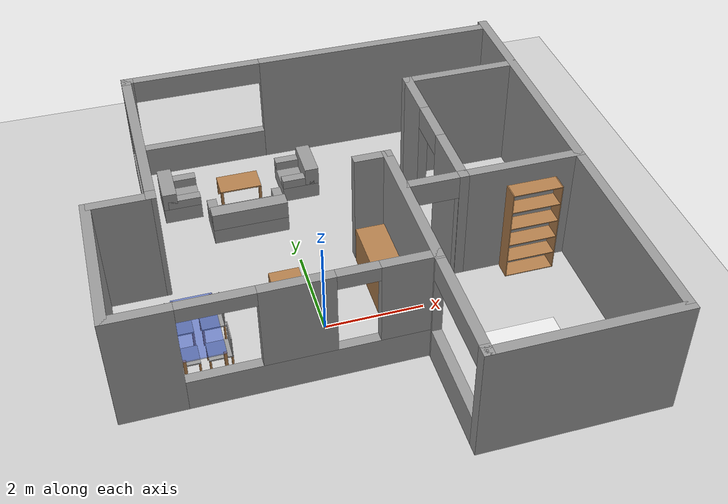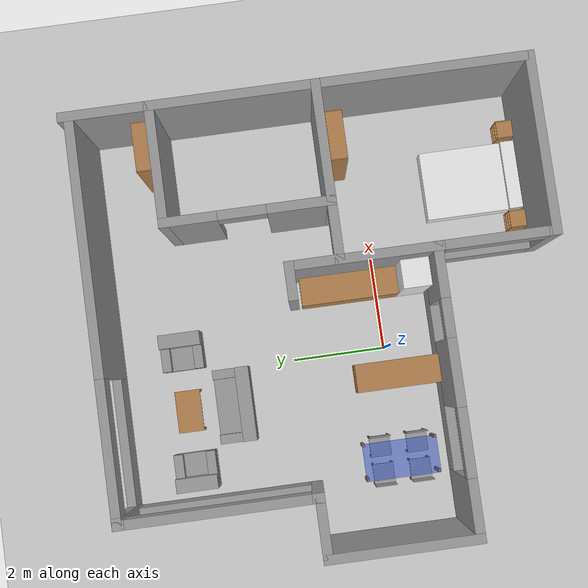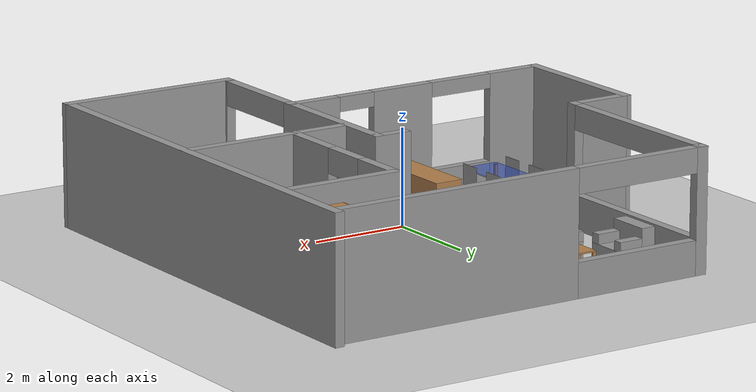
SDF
<sdf version="1.4">
 <world name="GrannyAnnie">
  <include><uri>model://house_int2</uri></include>
  <include><uri>model://ground_plane</uri></include>
  <light name="sun" type="directional">
   <pose>0 0 10 0 -0 0</pose>
   <diffuse>0.8 0.8 0.8 1</diffuse>
   <specular>0.2 0.2 0.2 1</specular>
   <attenuation>
    <range>1000</range>
    <constant>0.9</constant>
    <linear>0.01</linear>
    <quadratic>0.001</quadratic>
   </attenuation>
   <direction>-0.5 0.1 -0.9</direction>
  </light>
  <scene><ambient>0.4 0.4 0.4 1</ambient><background>0.7 0.7 0.7 1</background><shadows>1</shadows></scene>
 </world>
</sdf>
